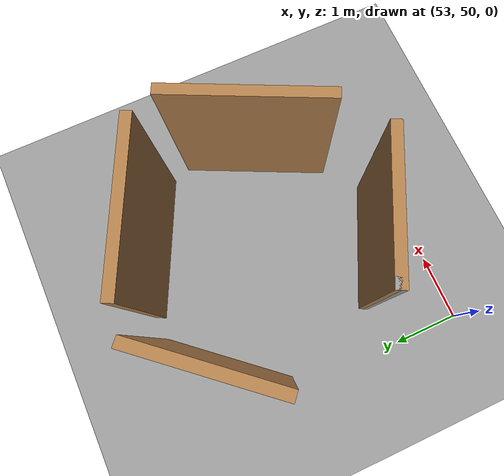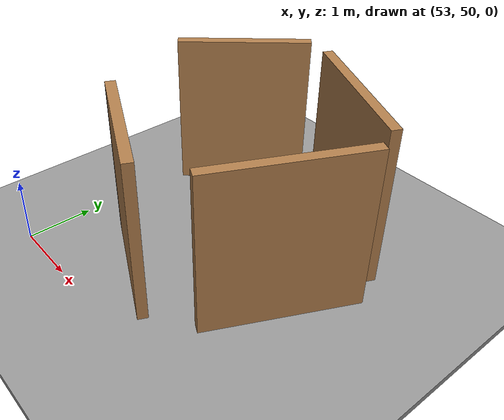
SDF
<sdf version="1.6">
 <world name="default">
  <model name="ground_plane">
   <static>1</static>
   <link name="link">
    <collision name="collision">
     <geometry><plane><normal>0 0 1</normal><size>100 100</size></plane></geometry>
     <surface><friction><ode><mu>100</mu><mu2>50</mu2></ode></friction></surface>
    </collision>
    <visual name="visual">
     <cast_shadows>0</cast_shadows>
     <geometry><plane><normal>0 0 1</normal><size>100 100</size></plane></geometry>
     <material>
      <script><uri>file://media/materials/scripts/gazebo.material</uri><name>Gazebo/Grey</name></script>
     </material>
    </visual>
   </link>
  </model>
  <model name="obs1_0">
   <pose>54.9174 52.4188 0 0 0 -2.02091</pose>
   <link name="Wall_10">
    <collision name="Wall_10_Collision">
     <geometry><box><size>2 0.15 2.5</size></box></geometry>
     <pose>0 0 1.25 0 -0 0</pose>
    </collision>
    <visual name="Wall_10_Visual">
     <pose>0 0 1.25 0 -0 0</pose>
     <geometry><box><size>2 0.15 2.5</size></box></geometry>
     <material>
      <script><uri>file://media/materials/scripts/gazebo.material</uri><name>Gazebo/Wood</name></script>
      <ambient>1 1 1 1</ambient>
     </material>
    </visual>
    <pose>-0.505188 -1.46687 0 0 0 -0.261799</pose>
   </link>
   <link name="Wall_2">
    <collision name="Wall_2_Collision">
     <geometry><box><size>2.25 0.15 2.5</size></box></geometry>
     <pose>0 0 1.25 0 -0 0</pose>
    </collision>
    <visual name="Wall_2_Visual">
     <pose>0 0 1.25 0 -0 0</pose>
     <geometry><box><size>2.25 0.15 2.5</size></box></geometry>
     <material>
      <script><uri>file://media/materials/scripts/gazebo.material</uri><name>Gazebo/Wood</name></script>
      <ambient>1 1 1 1</ambient>
     </material>
    </visual>
    <pose>-1.58039 0.313508 0 0 0 -1.5708</pose>
   </link>
   <link name="Wall_5">
    <collision name="Wall_5_Collision">
     <geometry><box><size>2.25 0.15 2.5</size></box></geometry>
     <pose>0 0 1.25 0 -0 0</pose>
    </collision>
    <visual name="Wall_5_Visual">
     <pose>0 0 1.25 0 -0 0</pose>
     <geometry><box><size>2.25 0.15 2.5</size></box></geometry>
     <material>
      <script><uri>file://media/materials/scripts/gazebo.material</uri><name>Gazebo/Wood</name></script>
      <ambient>1 1 1 1</ambient>
     </material>
    </visual>
    <pose>-0.185262 1.72313 0 0 -0 0</pose>
   </link>
   <link name="Wall_7">
    <collision name="Wall_7_Collision">
     <geometry><box><size>2 0.15 2.5</size></box></geometry>
     <pose>0 0 1.25 0 -0 0</pose>
    </collision>
    <visual name="Wall_7_Visual">
     <pose>0 0 1.25 0 -0 0</pose>
     <geometry><box><size>2 0.15 2.5</size></box></geometry>
     <material>
      <script><uri>file://media/materials/scripts/gazebo.material</uri><name>Gazebo/Wood</name></script>
      <ambient>1 1 1 1</ambient>
     </material>
    </visual>
    <pose>1.58039 0.398833 0 0 0 -1.5708</pose>
   </link>
   <link name="Wall_8">
    <collision name="Wall_8_Collision">
     <geometry><box><size>0.15 0.15 2.5</size></box></geometry>
     <pose>0 0 1.25 0 -0 0</pose>
    </collision>
    <visual name="Wall_8_Visual">
     <pose>0 0 1.25 0 -0 0</pose>
     <geometry><box><size>0.15 0.15 2.5</size></box></geometry>
     <material>
      <script><uri>file://media/materials/scripts/gazebo.material</uri><name>Gazebo/Grey</name></script>
      <ambient>1 1 1 1</ambient>
     </material>
    </visual>
    <pose>1.58039 -0.526167 0 0 -0 0</pose>
   </link>
   <static>1</static>
  </model>
  <model name="ground_plane_1">
   <static>1</static>
   <link name="link">
    <collision name="collision">
     <geometry><plane><normal>0 0 1</normal><size>100 100</size></plane></geometry>
     <surface><friction><ode><mu>100</mu><mu2>50</mu2></ode></friction></surface>
    </collision>
    <visual name="visual">
     <cast_shadows>0</cast_shadows>
     <geometry><plane><normal>0 0 1</normal><size>100 100</size></plane></geometry>
     <material>
      <script><uri>file://media/materials/scripts/gazebo.material</uri><name>Gazebo/Grey</name></script>
     </material>
    </visual>
   </link>
   <pose>37.0846 70.6419 0 0 -0 0</pose>
  </model>
 </world>
</sdf>
